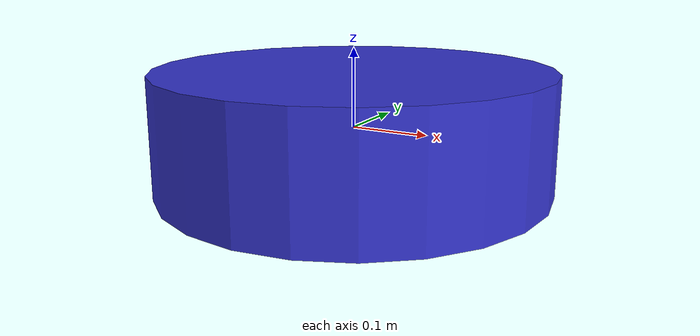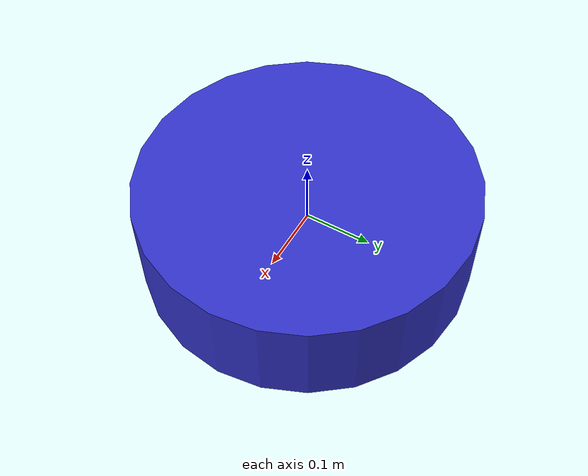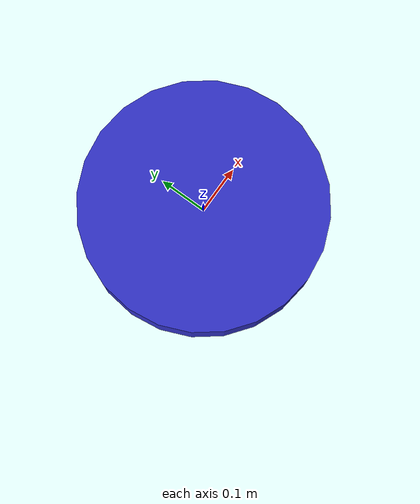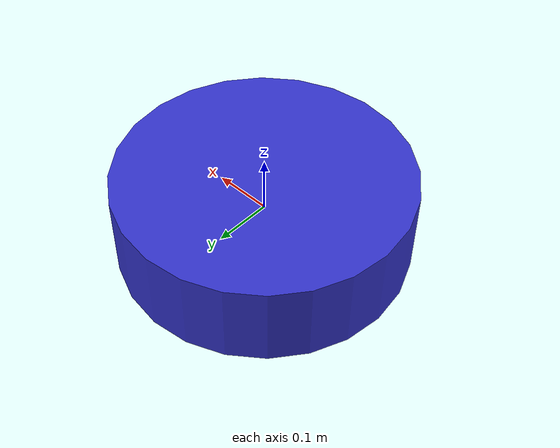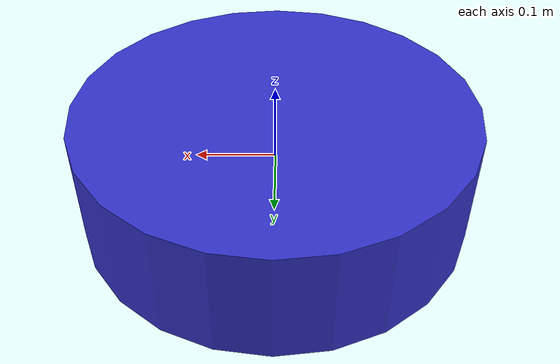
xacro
<?xml version="1.0"?>
<!--
  Robot URDF Model (Xacro)

  Mô hình robot với omni wheel base + cánh tay.
  Tham chiếu: omni_wheel_module/OpenBase-master/model/
-->
<robot xmlns:xacro="http://www.ros.org/wiki/xacro" name="autonomous_robot">

  <!-- Properties -->
  <xacro:property name="base_radius" value="0.25"/>
  <xacro:property name="base_height" value="0.15"/>
  <xacro:property name="wheel_radius" value="0.05"/>
  <xacro:property name="wheel_width" value="0.03"/>

  <!-- Base Link -->
  <link name="base_link">
    <visual>
      <geometry>
        <cylinder radius="${base_radius}" length="${base_height}"/>
      </geometry>
      <material name="blue">
        <color rgba="0.2 0.2 0.8 1.0"/>
      </material>
    </visual>
    <collision>
      <geometry>
        <cylinder radius="${base_radius}" length="${base_height}"/>
      </geometry>
    </collision>
    <inertial>
      <mass value="5.0"/>
      <inertia ixx="0.1" ixy="0" ixz="0" iyy="0.1" iyz="0" izz="0.1"/>
    </inertial>
  </link>

  <!-- TODO: Thêm omni wheels (3 hoặc 4 bánh) -->
  <!-- TODO: Thêm cánh tay robot -->
  <!-- TODO: Thêm camera sensor -->
  <!-- TODO: Thêm ultrasonic sensors -->

</robot>
